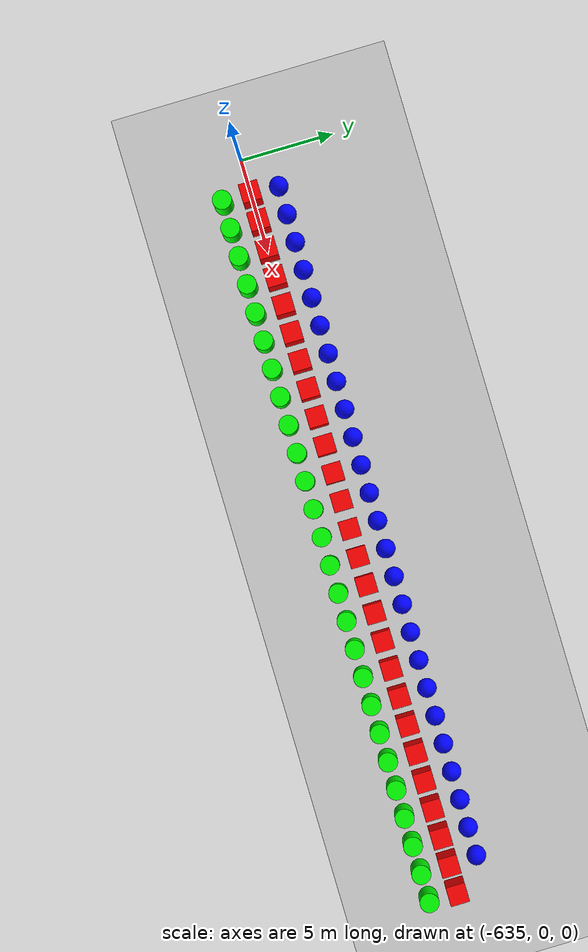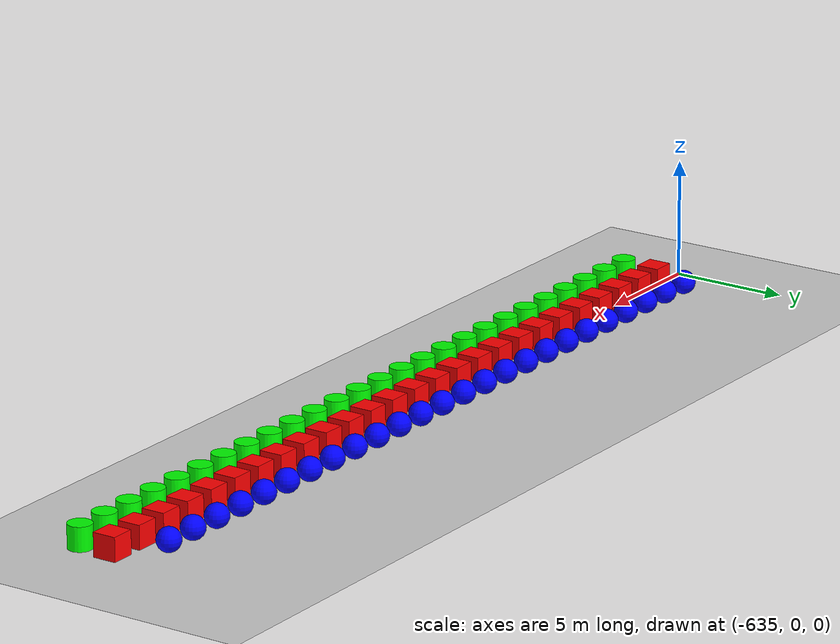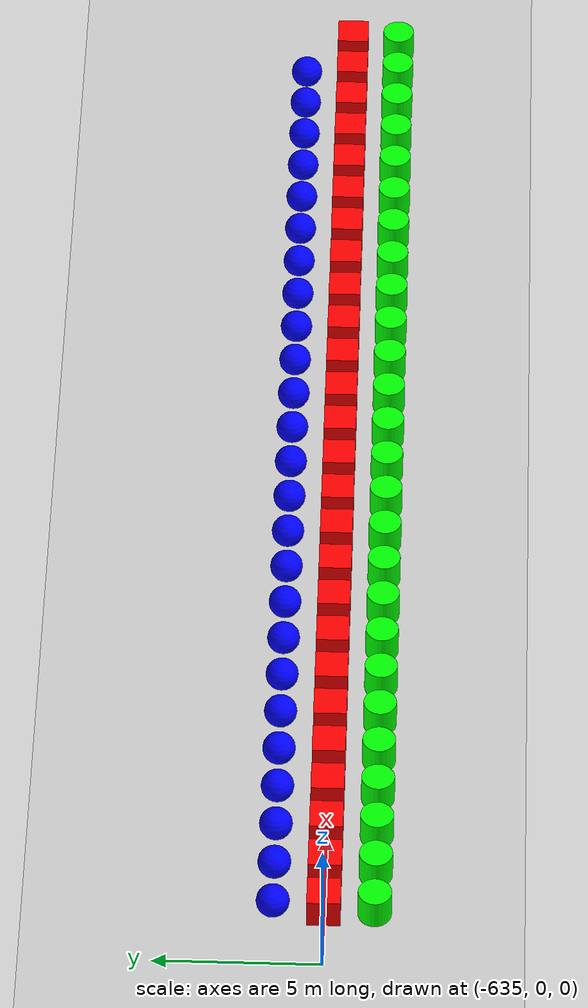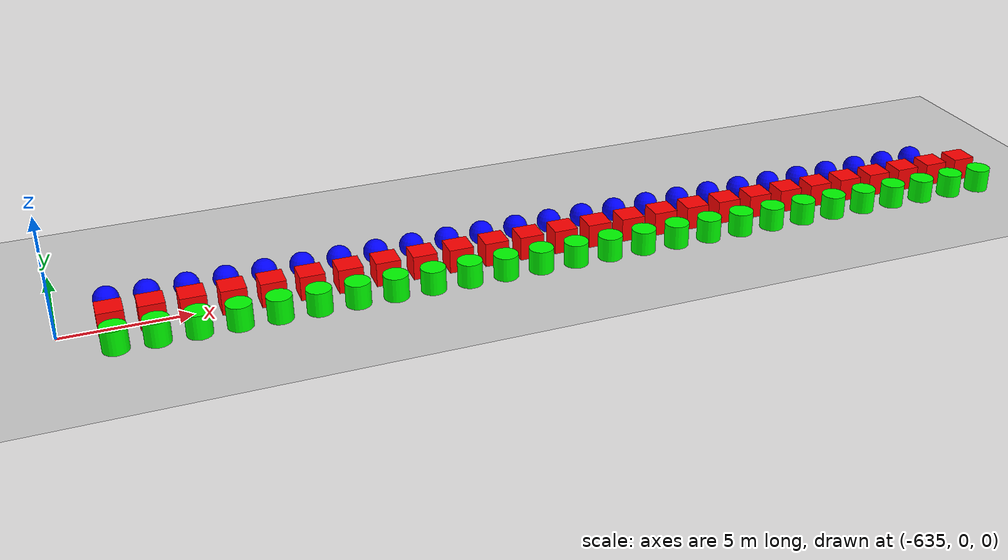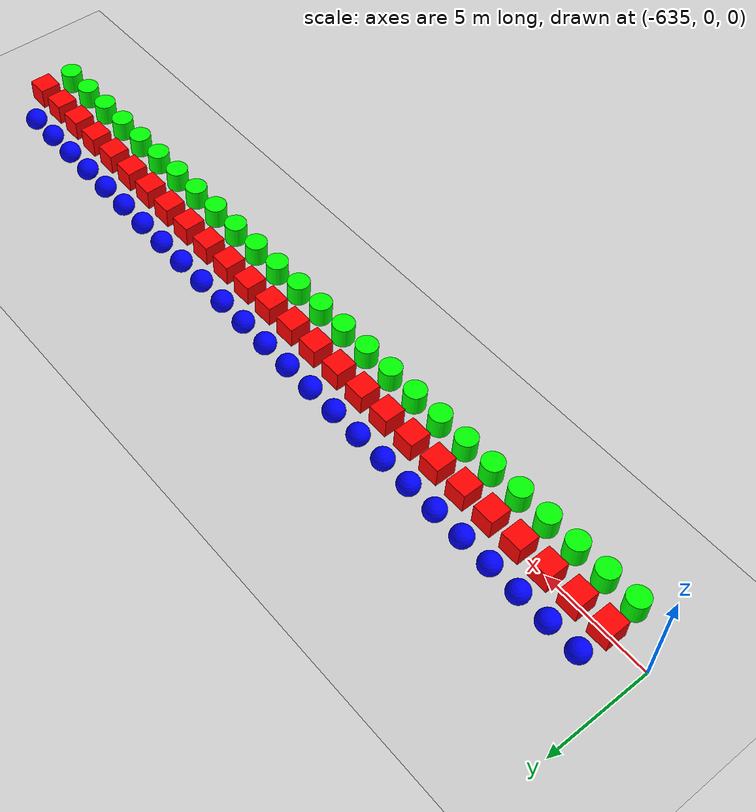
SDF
<sdf version="1.6">
 <world name="shapes">
  <model name="ground_plane">
   <static>true</static>
   <link name="link">
    <collision name="collision">
     <geometry><plane><normal>0 0 1</normal><size>100 100</size></plane></geometry>
    </collision>
    <visual name="visual">
     <geometry><plane><normal>0 0 1</normal><size>100 100</size></plane></geometry>
     <material>
      <ambient>0.8 0.8 0.8 1</ambient>
      <diffuse>0.8 0.8 0.8 1</diffuse>
      <specular>0.8 0.8 0.8 1</specular>
     </material>
    </visual>
   </link>
  </model>
  <model name="box_78">
   <static>false</static>
   <pose>-633.0 0 0.5 0 0 0</pose>
   <link name="box_link">
    <inertial>
     <inertia><ixx>1</ixx><ixy>0</ixy><ixz>0</ixz><iyy>1</iyy><iyz>0</iyz><izz>1</izz></inertia>
     <mass>1.0</mass>
    </inertial>
    <collision name="box_collision"><geometry><box><size>1 1 1</size></box></geometry></collision>
    <visual name="box_visual">
     <geometry><box><size>1 1 1</size></box></geometry>
     <material><ambient>1 0 0 1</ambient><diffuse>1 0 0 1</diffuse><specular>1 0 0 1</specular></material>
    </visual>
   </link>
  </model>
  <model name="cylinder_78">
   <static>false</static>
   <pose>-633.0 -1.5 0.5 0 0 0</pose>
   <link name="cylinder_link">
    <inertial>
     <inertia><ixx>2</ixx><ixy>0</ixy><ixz>0</ixz><iyy>2</iyy><iyz>0</iyz><izz>2</izz></inertia>
     <mass>2.0</mass>
    </inertial>
    <collision name="cylinder_collision">
     <geometry><cylinder><radius>0.5</radius><length>1.0</length></cylinder></geometry>
    </collision>
    <visual name="cylinder_visual">
     <geometry><cylinder><radius>0.5</radius><length>1.0</length></cylinder></geometry>
     <material><ambient>0 1 0 1</ambient><diffuse>0 1 0 1</diffuse><specular>0 1 0 1</specular></material>
    </visual>
   </link>
  </model>
  <model name="sphere_78">
   <static>false</static>
   <pose>-633.0 1.5 0.5 0 0 0</pose>
   <link name="sphere_link">
    <inertial>
     <inertia><ixx>3</ixx><ixy>0</ixy><ixz>0</ixz><iyy>3</iyy><iyz>0</iyz><izz>3</izz></inertia>
     <mass>3.0</mass>
    </inertial>
    <collision name="sphere_collision"><geometry><sphere><radius>0.5</radius></sphere></geometry></collision>
    <visual name="sphere_visual">
     <geometry><sphere><radius>0.5</radius></sphere></geometry>
     <material><ambient>0 0 1 1</ambient><diffuse>0 0 1 1</diffuse><specular>0 0 1 1</specular></material>
    </visual>
   </link>
  </model>
  <model name="box_79">
   <static>false</static>
   <pose>-631.5 0 0.5 0 0 0</pose>
   <link name="box_link">
    <inertial>
     <inertia><ixx>1</ixx><ixy>0</ixy><ixz>0</ixz><iyy>1</iyy><iyz>0</iyz><izz>1</izz></inertia>
     <mass>1.0</mass>
    </inertial>
    <collision name="box_collision"><geometry><box><size>1 1 1</size></box></geometry></collision>
    <visual name="box_visual">
     <geometry><box><size>1 1 1</size></box></geometry>
     <material><ambient>1 0 0 1</ambient><diffuse>1 0 0 1</diffuse><specular>1 0 0 1</specular></material>
    </visual>
   </link>
  </model>
  <model name="cylinder_79">
   <static>false</static>
   <pose>-631.5 -1.5 0.5 0 0 0</pose>
   <link name="cylinder_link">
    <inertial>
     <inertia><ixx>2</ixx><ixy>0</ixy><ixz>0</ixz><iyy>2</iyy><iyz>0</iyz><izz>2</izz></inertia>
     <mass>2.0</mass>
    </inertial>
    <collision name="cylinder_collision">
     <geometry><cylinder><radius>0.5</radius><length>1.0</length></cylinder></geometry>
    </collision>
    <visual name="cylinder_visual">
     <geometry><cylinder><radius>0.5</radius><length>1.0</length></cylinder></geometry>
     <material><ambient>0 1 0 1</ambient><diffuse>0 1 0 1</diffuse><specular>0 1 0 1</specular></material>
    </visual>
   </link>
  </model>
  <model name="sphere_79">
   <static>false</static>
   <pose>-631.5 1.5 0.5 0 0 0</pose>
   <link name="sphere_link">
    <inertial>
     <inertia><ixx>3</ixx><ixy>0</ixy><ixz>0</ixz><iyy>3</iyy><iyz>0</iyz><izz>3</izz></inertia>
     <mass>3.0</mass>
    </inertial>
    <collision name="sphere_collision"><geometry><sphere><radius>0.5</radius></sphere></geometry></collision>
    <visual name="sphere_visual">
     <geometry><sphere><radius>0.5</radius></sphere></geometry>
     <material><ambient>0 0 1 1</ambient><diffuse>0 0 1 1</diffuse><specular>0 0 1 1</specular></material>
    </visual>
   </link>
  </model>
  <model name="box_80">
   <static>false</static>
   <pose>-630.0 0 0.5 0 0 0</pose>
   <link name="box_link">
    <inertial>
     <inertia><ixx>1</ixx><ixy>0</ixy><ixz>0</ixz><iyy>1</iyy><iyz>0</iyz><izz>1</izz></inertia>
     <mass>1.0</mass>
    </inertial>
    <collision name="box_collision"><geometry><box><size>1 1 1</size></box></geometry></collision>
    <visual name="box_visual">
     <geometry><box><size>1 1 1</size></box></geometry>
     <material><ambient>1 0 0 1</ambient><diffuse>1 0 0 1</diffuse><specular>1 0 0 1</specular></material>
    </visual>
   </link>
  </model>
  <model name="cylinder_80">
   <static>false</static>
   <pose>-630.0 -1.5 0.5 0 0 0</pose>
   <link name="cylinder_link">
    <inertial>
     <inertia><ixx>2</ixx><ixy>0</ixy><ixz>0</ixz><iyy>2</iyy><iyz>0</iyz><izz>2</izz></inertia>
     <mass>2.0</mass>
    </inertial>
    <collision name="cylinder_collision">
     <geometry><cylinder><radius>0.5</radius><length>1.0</length></cylinder></geometry>
    </collision>
    <visual name="cylinder_visual">
     <geometry><cylinder><radius>0.5</radius><length>1.0</length></cylinder></geometry>
     <material><ambient>0 1 0 1</ambient><diffuse>0 1 0 1</diffuse><specular>0 1 0 1</specular></material>
    </visual>
   </link>
  </model>
  <model name="sphere_80">
   <static>false</static>
   <pose>-630.0 1.5 0.5 0 0 0</pose>
   <link name="sphere_link">
    <inertial>
     <inertia><ixx>3</ixx><ixy>0</ixy><ixz>0</ixz><iyy>3</iyy><iyz>0</iyz><izz>3</izz></inertia>
     <mass>3.0</mass>
    </inertial>
    <collision name="sphere_collision"><geometry><sphere><radius>0.5</radius></sphere></geometry></collision>
    <visual name="sphere_visual">
     <geometry><sphere><radius>0.5</radius></sphere></geometry>
     <material><ambient>0 0 1 1</ambient><diffuse>0 0 1 1</diffuse><specular>0 0 1 1</specular></material>
    </visual>
   </link>
  </model>
  <model name="box_81">
   <static>false</static>
   <pose>-628.5 0 0.5 0 0 0</pose>
   <link name="box_link">
    <inertial>
     <inertia><ixx>1</ixx><ixy>0</ixy><ixz>0</ixz><iyy>1</iyy><iyz>0</iyz><izz>1</izz></inertia>
     <mass>1.0</mass>
    </inertial>
    <collision name="box_collision"><geometry><box><size>1 1 1</size></box></geometry></collision>
    <visual name="box_visual">
     <geometry><box><size>1 1 1</size></box></geometry>
     <material><ambient>1 0 0 1</ambient><diffuse>1 0 0 1</diffuse><specular>1 0 0 1</specular></material>
    </visual>
   </link>
  </model>
  <model name="cylinder_81">
   <static>false</static>
   <pose>-628.5 -1.5 0.5 0 0 0</pose>
   <link name="cylinder_link">
    <inertial>
     <inertia><ixx>2</ixx><ixy>0</ixy><ixz>0</ixz><iyy>2</iyy><iyz>0</iyz><izz>2</izz></inertia>
     <mass>2.0</mass>
    </inertial>
    <collision name="cylinder_collision">
     <geometry><cylinder><radius>0.5</radius><length>1.0</length></cylinder></geometry>
    </collision>
    <visual name="cylinder_visual">
     <geometry><cylinder><radius>0.5</radius><length>1.0</length></cylinder></geometry>
     <material><ambient>0 1 0 1</ambient><diffuse>0 1 0 1</diffuse><specular>0 1 0 1</specular></material>
    </visual>
   </link>
  </model>
  <model name="sphere_81">
   <static>false</static>
   <pose>-628.5 1.5 0.5 0 0 0</pose>
   <link name="sphere_link">
    <inertial>
     <inertia><ixx>3</ixx><ixy>0</ixy><ixz>0</ixz><iyy>3</iyy><iyz>0</iyz><izz>3</izz></inertia>
     <mass>3.0</mass>
    </inertial>
    <collision name="sphere_collision"><geometry><sphere><radius>0.5</radius></sphere></geometry></collision>
    <visual name="sphere_visual">
     <geometry><sphere><radius>0.5</radius></sphere></geometry>
     <material><ambient>0 0 1 1</ambient><diffuse>0 0 1 1</diffuse><specular>0 0 1 1</specular></material>
    </visual>
   </link>
  </model>
  <model name="box_82">
   <static>false</static>
   <pose>-627.0 0 0.5 0 0 0</pose>
   <link name="box_link">
    <inertial>
     <inertia><ixx>1</ixx><ixy>0</ixy><ixz>0</ixz><iyy>1</iyy><iyz>0</iyz><izz>1</izz></inertia>
     <mass>1.0</mass>
    </inertial>
    <collision name="box_collision"><geometry><box><size>1 1 1</size></box></geometry></collision>
    <visual name="box_visual">
     <geometry><box><size>1 1 1</size></box></geometry>
     <material><ambient>1 0 0 1</ambient><diffuse>1 0 0 1</diffuse><specular>1 0 0 1</specular></material>
    </visual>
   </link>
  </model>
  <model name="cylinder_82">
   <static>false</static>
   <pose>-627.0 -1.5 0.5 0 0 0</pose>
   <link name="cylinder_link">
    <inertial>
     <inertia><ixx>2</ixx><ixy>0</ixy><ixz>0</ixz><iyy>2</iyy><iyz>0</iyz><izz>2</izz></inertia>
     <mass>2.0</mass>
    </inertial>
    <collision name="cylinder_collision">
     <geometry><cylinder><radius>0.5</radius><length>1.0</length></cylinder></geometry>
    </collision>
    <visual name="cylinder_visual">
     <geometry><cylinder><radius>0.5</radius><length>1.0</length></cylinder></geometry>
     <material><ambient>0 1 0 1</ambient><diffuse>0 1 0 1</diffuse><specular>0 1 0 1</specular></material>
    </visual>
   </link>
  </model>
  <model name="sphere_82">
   <static>false</static>
   <pose>-627.0 1.5 0.5 0 0 0</pose>
   <link name="sphere_link">
    <inertial>
     <inertia><ixx>3</ixx><ixy>0</ixy><ixz>0</ixz><iyy>3</iyy><iyz>0</iyz><izz>3</izz></inertia>
     <mass>3.0</mass>
    </inertial>
    <collision name="sphere_collision"><geometry><sphere><radius>0.5</radius></sphere></geometry></collision>
    <visual name="sphere_visual">
     <geometry><sphere><radius>0.5</radius></sphere></geometry>
     <material><ambient>0 0 1 1</ambient><diffuse>0 0 1 1</diffuse><specular>0 0 1 1</specular></material>
    </visual>
   </link>
  </model>
  <model name="box_83">
   <static>false</static>
   <pose>-625.5 0 0.5 0 0 0</pose>
   <link name="box_link">
    <inertial>
     <inertia><ixx>1</ixx><ixy>0</ixy><ixz>0</ixz><iyy>1</iyy><iyz>0</iyz><izz>1</izz></inertia>
     <mass>1.0</mass>
    </inertial>
    <collision name="box_collision"><geometry><box><size>1 1 1</size></box></geometry></collision>
    <visual name="box_visual">
     <geometry><box><size>1 1 1</size></box></geometry>
     <material><ambient>1 0 0 1</ambient><diffuse>1 0 0 1</diffuse><specular>1 0 0 1</specular></material>
    </visual>
   </link>
  </model>
  <model name="cylinder_83">
   <static>false</static>
   <pose>-625.5 -1.5 0.5 0 0 0</pose>
   <link name="cylinder_link">
    <inertial>
     <inertia><ixx>2</ixx><ixy>0</ixy><ixz>0</ixz><iyy>2</iyy><iyz>0</iyz><izz>2</izz></inertia>
     <mass>2.0</mass>
    </inertial>
    <collision name="cylinder_collision">
     <geometry><cylinder><radius>0.5</radius><length>1.0</length></cylinder></geometry>
    </collision>
    <visual name="cylinder_visual">
     <geometry><cylinder><radius>0.5</radius><length>1.0</length></cylinder></geometry>
     <material><ambient>0 1 0 1</ambient><diffuse>0 1 0 1</diffuse><specular>0 1 0 1</specular></material>
    </visual>
   </link>
  </model>
  <model name="sphere_83">
   <static>false</static>
   <pose>-625.5 1.5 0.5 0 0 0</pose>
   <link name="sphere_link">
    <inertial>
     <inertia><ixx>3</ixx><ixy>0</ixy><ixz>0</ixz><iyy>3</iyy><iyz>0</iyz><izz>3</izz></inertia>
     <mass>3.0</mass>
    </inertial>
    <collision name="sphere_collision"><geometry><sphere><radius>0.5</radius></sphere></geometry></collision>
    <visual name="sphere_visual">
     <geometry><sphere><radius>0.5</radius></sphere></geometry>
     <material><ambient>0 0 1 1</ambient><diffuse>0 0 1 1</diffuse><specular>0 0 1 1</specular></material>
    </visual>
   </link>
  </model>
  <model name="box_84">
   <static>false</static>
   <pose>-624.0 0 0.5 0 0 0</pose>
   <link name="box_link">
    <inertial>
     <inertia><ixx>1</ixx><ixy>0</ixy><ixz>0</ixz><iyy>1</iyy><iyz>0</iyz><izz>1</izz></inertia>
     <mass>1.0</mass>
    </inertial>
    <collision name="box_collision"><geometry><box><size>1 1 1</size></box></geometry></collision>
    <visual name="box_visual">
     <geometry><box><size>1 1 1</size></box></geometry>
     <material><ambient>1 0 0 1</ambient><diffuse>1 0 0 1</diffuse><specular>1 0 0 1</specular></material>
    </visual>
   </link>
  </model>
  <model name="cylinder_84">
   <static>false</static>
   <pose>-624.0 -1.5 0.5 0 0 0</pose>
   <link name="cylinder_link">
    <inertial>
     <inertia><ixx>2</ixx><ixy>0</ixy><ixz>0</ixz><iyy>2</iyy><iyz>0</iyz><izz>2</izz></inertia>
     <mass>2.0</mass>
    </inertial>
    <collision name="cylinder_collision">
     <geometry><cylinder><radius>0.5</radius><length>1.0</length></cylinder></geometry>
    </collision>
    <visual name="cylinder_visual">
     <geometry><cylinder><radius>0.5</radius><length>1.0</length></cylinder></geometry>
     <material><ambient>0 1 0 1</ambient><diffuse>0 1 0 1</diffuse><specular>0 1 0 1</specular></material>
    </visual>
   </link>
  </model>
  <model name="sphere_84">
   <static>false</static>
   <pose>-624.0 1.5 0.5 0 0 0</pose>
   <link name="sphere_link">
    <inertial>
     <inertia><ixx>3</ixx><ixy>0</ixy><ixz>0</ixz><iyy>3</iyy><iyz>0</iyz><izz>3</izz></inertia>
     <mass>3.0</mass>
    </inertial>
    <collision name="sphere_collision"><geometry><sphere><radius>0.5</radius></sphere></geometry></collision>
    <visual name="sphere_visual">
     <geometry><sphere><radius>0.5</radius></sphere></geometry>
     <material><ambient>0 0 1 1</ambient><diffuse>0 0 1 1</diffuse><specular>0 0 1 1</specular></material>
    </visual>
   </link>
  </model>
  <model name="box_85">
   <static>false</static>
   <pose>-622.5 0 0.5 0 0 0</pose>
   <link name="box_link">
    <inertial>
     <inertia><ixx>1</ixx><ixy>0</ixy><ixz>0</ixz><iyy>1</iyy><iyz>0</iyz><izz>1</izz></inertia>
     <mass>1.0</mass>
    </inertial>
    <collision name="box_collision"><geometry><box><size>1 1 1</size></box></geometry></collision>
    <visual name="box_visual">
     <geometry><box><size>1 1 1</size></box></geometry>
     <material><ambient>1 0 0 1</ambient><diffuse>1 0 0 1</diffuse><specular>1 0 0 1</specular></material>
    </visual>
   </link>
  </model>
  <model name="cylinder_85">
   <static>false</static>
   <pose>-622.5 -1.5 0.5 0 0 0</pose>
   <link name="cylinder_link">
    <inertial>
     <inertia><ixx>2</ixx><ixy>0</ixy><ixz>0</ixz><iyy>2</iyy><iyz>0</iyz><izz>2</izz></inertia>
     <mass>2.0</mass>
    </inertial>
    <collision name="cylinder_collision">
     <geometry><cylinder><radius>0.5</radius><length>1.0</length></cylinder></geometry>
    </collision>
    <visual name="cylinder_visual">
     <geometry><cylinder><radius>0.5</radius><length>1.0</length></cylinder></geometry>
     <material><ambient>0 1 0 1</ambient><diffuse>0 1 0 1</diffuse><specular>0 1 0 1</specular></material>
    </visual>
   </link>
  </model>
  <model name="sphere_85">
   <static>false</static>
   <pose>-622.5 1.5 0.5 0 0 0</pose>
   <link name="sphere_link">
    <inertial>
     <inertia><ixx>3</ixx><ixy>0</ixy><ixz>0</ixz><iyy>3</iyy><iyz>0</iyz><izz>3</izz></inertia>
     <mass>3.0</mass>
    </inertial>
    <collision name="sphere_collision"><geometry><sphere><radius>0.5</radius></sphere></geometry></collision>
    <visual name="sphere_visual">
     <geometry><sphere><radius>0.5</radius></sphere></geometry>
     <material><ambient>0 0 1 1</ambient><diffuse>0 0 1 1</diffuse><specular>0 0 1 1</specular></material>
    </visual>
   </link>
  </model>
  <model name="box_86">
   <static>false</static>
   <pose>-621.0 0 0.5 0 0 0</pose>
   <link name="box_link">
    <inertial>
     <inertia><ixx>1</ixx><ixy>0</ixy><ixz>0</ixz><iyy>1</iyy><iyz>0</iyz><izz>1</izz></inertia>
     <mass>1.0</mass>
    </inertial>
    <collision name="box_collision"><geometry><box><size>1 1 1</size></box></geometry></collision>
    <visual name="box_visual">
     <geometry><box><size>1 1 1</size></box></geometry>
     <material><ambient>1 0 0 1</ambient><diffuse>1 0 0 1</diffuse><specular>1 0 0 1</specular></material>
    </visual>
   </link>
  </model>
  <model name="cylinder_86">
   <static>false</static>
   <pose>-621.0 -1.5 0.5 0 0 0</pose>
   <link name="cylinder_link">
    <inertial>
     <inertia><ixx>2</ixx><ixy>0</ixy><ixz>0</ixz><iyy>2</iyy><iyz>0</iyz><izz>2</izz></inertia>
     <mass>2.0</mass>
    </inertial>
    <collision name="cylinder_collision">
     <geometry><cylinder><radius>0.5</radius><length>1.0</length></cylinder></geometry>
    </collision>
    <visual name="cylinder_visual">
     <geometry><cylinder><radius>0.5</radius><length>1.0</length></cylinder></geometry>
     <material><ambient>0 1 0 1</ambient><diffuse>0 1 0 1</diffuse><specular>0 1 0 1</specular></material>
    </visual>
   </link>
  </model>
  <model name="sphere_86">
   <static>false</static>
   <pose>-621.0 1.5 0.5 0 0 0</pose>
   <link name="sphere_link">
    <inertial>
     <inertia><ixx>3</ixx><ixy>0</ixy><ixz>0</ixz><iyy>3</iyy><iyz>0</iyz><izz>3</izz></inertia>
     <mass>3.0</mass>
    </inertial>
    <collision name="sphere_collision"><geometry><sphere><radius>0.5</radius></sphere></geometry></collision>
    <visual name="sphere_visual">
     <geometry><sphere><radius>0.5</radius></sphere></geometry>
     <material><ambient>0 0 1 1</ambient><diffuse>0 0 1 1</diffuse><specular>0 0 1 1</specular></material>
    </visual>
   </link>
  </model>
  <model name="box_87">
   <static>false</static>
   <pose>-619.5 0 0.5 0 0 0</pose>
   <link name="box_link">
    <inertial>
     <inertia><ixx>1</ixx><ixy>0</ixy><ixz>0</ixz><iyy>1</iyy><iyz>0</iyz><izz>1</izz></inertia>
     <mass>1.0</mass>
    </inertial>
    <collision name="box_collision"><geometry><box><size>1 1 1</size></box></geometry></collision>
    <visual name="box_visual">
     <geometry><box><size>1 1 1</size></box></geometry>
     <material><ambient>1 0 0 1</ambient><diffuse>1 0 0 1</diffuse><specular>1 0 0 1</specular></material>
    </visual>
   </link>
  </model>
  <model name="cylinder_87">
   <static>false</static>
   <pose>-619.5 -1.5 0.5 0 0 0</pose>
   <link name="cylinder_link">
    <inertial>
     <inertia><ixx>2</ixx><ixy>0</ixy><ixz>0</ixz><iyy>2</iyy><iyz>0</iyz><izz>2</izz></inertia>
     <mass>2.0</mass>
    </inertial>
    <collision name="cylinder_collision">
     <geometry><cylinder><radius>0.5</radius><length>1.0</length></cylinder></geometry>
    </collision>
    <visual name="cylinder_visual">
     <geometry><cylinder><radius>0.5</radius><length>1.0</length></cylinder></geometry>
     <material><ambient>0 1 0 1</ambient><diffuse>0 1 0 1</diffuse><specular>0 1 0 1</specular></material>
    </visual>
   </link>
  </model>
  <model name="sphere_87">
   <static>false</static>
   <pose>-619.5 1.5 0.5 0 0 0</pose>
   <link name="sphere_link">
    <inertial>
     <inertia><ixx>3</ixx><ixy>0</ixy><ixz>0</ixz><iyy>3</iyy><iyz>0</iyz><izz>3</izz></inertia>
     <mass>3.0</mass>
    </inertial>
    <collision name="sphere_collision"><geometry><sphere><radius>0.5</radius></sphere></geometry></collision>
    <visual name="sphere_visual">
     <geometry><sphere><radius>0.5</radius></sphere></geometry>
     <material><ambient>0 0 1 1</ambient><diffuse>0 0 1 1</diffuse><specular>0 0 1 1</specular></material>
    </visual>
   </link>
  </model>
  <model name="box_88">
   <static>false</static>
   <pose>-618.0 0 0.5 0 0 0</pose>
   <link name="box_link">
    <inertial>
     <inertia><ixx>1</ixx><ixy>0</ixy><ixz>0</ixz><iyy>1</iyy><iyz>0</iyz><izz>1</izz></inertia>
     <mass>1.0</mass>
    </inertial>
    <collision name="box_collision"><geometry><box><size>1 1 1</size></box></geometry></collision>
    <visual name="box_visual">
     <geometry><box><size>1 1 1</size></box></geometry>
     <material><ambient>1 0 0 1</ambient><diffuse>1 0 0 1</diffuse><specular>1 0 0 1</specular></material>
    </visual>
   </link>
  </model>
  <model name="cylinder_88">
   <static>false</static>
   <pose>-618.0 -1.5 0.5 0 0 0</pose>
   <link name="cylinder_link">
    <inertial>
     <inertia><ixx>2</ixx><ixy>0</ixy><ixz>0</ixz><iyy>2</iyy><iyz>0</iyz><izz>2</izz></inertia>
     <mass>2.0</mass>
    </inertial>
    <collision name="cylinder_collision">
     <geometry><cylinder><radius>0.5</radius><length>1.0</length></cylinder></geometry>
    </collision>
    <visual name="cylinder_visual">
     <geometry><cylinder><radius>0.5</radius><length>1.0</length></cylinder></geometry>
     <material><ambient>0 1 0 1</ambient><diffuse>0 1 0 1</diffuse><specular>0 1 0 1</specular></material>
    </visual>
   </link>
  </model>
  <model name="sphere_88">
   <static>false</static>
   <pose>-618.0 1.5 0.5 0 0 0</pose>
   <link name="sphere_link">
    <inertial>
     <inertia><ixx>3</ixx><ixy>0</ixy><ixz>0</ixz><iyy>3</iyy><iyz>0</iyz><izz>3</izz></inertia>
     <mass>3.0</mass>
    </inertial>
    <collision name="sphere_collision"><geometry><sphere><radius>0.5</radius></sphere></geometry></collision>
    <visual name="sphere_visual">
     <geometry><sphere><radius>0.5</radius></sphere></geometry>
     <material><ambient>0 0 1 1</ambient><diffuse>0 0 1 1</diffuse><specular>0 0 1 1</specular></material>
    </visual>
   </link>
  </model>
  <model name="box_89">
   <static>false</static>
   <pose>-616.5 0 0.5 0 0 0</pose>
   <link name="box_link">
    <inertial>
     <inertia><ixx>1</ixx><ixy>0</ixy><ixz>0</ixz><iyy>1</iyy><iyz>0</iyz><izz>1</izz></inertia>
     <mass>1.0</mass>
    </inertial>
    <collision name="box_collision"><geometry><box><size>1 1 1</size></box></geometry></collision>
    <visual name="box_visual">
     <geometry><box><size>1 1 1</size></box></geometry>
     <material><ambient>1 0 0 1</ambient><diffuse>1 0 0 1</diffuse><specular>1 0 0 1</specular></material>
    </visual>
   </link>
  </model>
  <model name="cylinder_89">
   <static>false</static>
   <pose>-616.5 -1.5 0.5 0 0 0</pose>
   <link name="cylinder_link">
    <inertial>
     <inertia><ixx>2</ixx><ixy>0</ixy><ixz>0</ixz><iyy>2</iyy><iyz>0</iyz><izz>2</izz></inertia>
     <mass>2.0</mass>
    </inertial>
    <collision name="cylinder_collision">
     <geometry><cylinder><radius>0.5</radius><length>1.0</length></cylinder></geometry>
    </collision>
    <visual name="cylinder_visual">
     <geometry><cylinder><radius>0.5</radius><length>1.0</length></cylinder></geometry>
     <material><ambient>0 1 0 1</ambient><diffuse>0 1 0 1</diffuse><specular>0 1 0 1</specular></material>
    </visual>
   </link>
  </model>
  <model name="sphere_89">
   <static>false</static>
   <pose>-616.5 1.5 0.5 0 0 0</pose>
   <link name="sphere_link">
    <inertial>
     <inertia><ixx>3</ixx><ixy>0</ixy><ixz>0</ixz><iyy>3</iyy><iyz>0</iyz><izz>3</izz></inertia>
     <mass>3.0</mass>
    </inertial>
    <collision name="sphere_collision"><geometry><sphere><radius>0.5</radius></sphere></geometry></collision>
    <visual name="sphere_visual">
     <geometry><sphere><radius>0.5</radius></sphere></geometry>
     <material><ambient>0 0 1 1</ambient><diffuse>0 0 1 1</diffuse><specular>0 0 1 1</specular></material>
    </visual>
   </link>
  </model>
  <model name="box_90">
   <static>false</static>
   <pose>-615.0 0 0.5 0 0 0</pose>
   <link name="box_link">
    <inertial>
     <inertia><ixx>1</ixx><ixy>0</ixy><ixz>0</ixz><iyy>1</iyy><iyz>0</iyz><izz>1</izz></inertia>
     <mass>1.0</mass>
    </inertial>
    <collision name="box_collision"><geometry><box><size>1 1 1</size></box></geometry></collision>
    <visual name="box_visual">
     <geometry><box><size>1 1 1</size></box></geometry>
     <material><ambient>1 0 0 1</ambient><diffuse>1 0 0 1</diffuse><specular>1 0 0 1</specular></material>
    </visual>
   </link>
  </model>
  <model name="cylinder_90">
   <static>false</static>
   <pose>-615.0 -1.5 0.5 0 0 0</pose>
   <link name="cylinder_link">
    <inertial>
     <inertia><ixx>2</ixx><ixy>0</ixy><ixz>0</ixz><iyy>2</iyy><iyz>0</iyz><izz>2</izz></inertia>
     <mass>2.0</mass>
    </inertial>
    <collision name="cylinder_collision">
     <geometry><cylinder><radius>0.5</radius><length>1.0</length></cylinder></geometry>
    </collision>
    <visual name="cylinder_visual">
     <geometry><cylinder><radius>0.5</radius><length>1.0</length></cylinder></geometry>
     <material><ambient>0 1 0 1</ambient><diffuse>0 1 0 1</diffuse><specular>0 1 0 1</specular></material>
    </visual>
   </link>
  </model>
  <model name="sphere_90">
   <static>false</static>
   <pose>-615.0 1.5 0.5 0 0 0</pose>
   <link name="sphere_link">
    <inertial>
     <inertia><ixx>3</ixx><ixy>0</ixy><ixz>0</ixz><iyy>3</iyy><iyz>0</iyz><izz>3</izz></inertia>
     <mass>3.0</mass>
    </inertial>
    <collision name="sphere_collision"><geometry><sphere><radius>0.5</radius></sphere></geometry></collision>
    <visual name="sphere_visual">
     <geometry><sphere><radius>0.5</radius></sphere></geometry>
     <material><ambient>0 0 1 1</ambient><diffuse>0 0 1 1</diffuse><specular>0 0 1 1</specular></material>
    </visual>
   </link>
  </model>
  <model name="box_91">
   <static>false</static>
   <pose>-613.5 0 0.5 0 0 0</pose>
   <link name="box_link">
    <inertial>
     <inertia><ixx>1</ixx><ixy>0</ixy><ixz>0</ixz><iyy>1</iyy><iyz>0</iyz><izz>1</izz></inertia>
     <mass>1.0</mass>
    </inertial>
    <collision name="box_collision"><geometry><box><size>1 1 1</size></box></geometry></collision>
    <visual name="box_visual">
     <geometry><box><size>1 1 1</size></box></geometry>
     <material><ambient>1 0 0 1</ambient><diffuse>1 0 0 1</diffuse><specular>1 0 0 1</specular></material>
    </visual>
   </link>
  </model>
  <model name="cylinder_91">
   <static>false</static>
   <pose>-613.5 -1.5 0.5 0 0 0</pose>
   <link name="cylinder_link">
    <inertial>
     <inertia><ixx>2</ixx><ixy>0</ixy><ixz>0</ixz><iyy>2</iyy><iyz>0</iyz><izz>2</izz></inertia>
     <mass>2.0</mass>
    </inertial>
    <collision name="cylinder_collision">
     <geometry><cylinder><radius>0.5</radius><length>1.0</length></cylinder></geometry>
    </collision>
    <visual name="cylinder_visual">
     <geometry><cylinder><radius>0.5</radius><length>1.0</length></cylinder></geometry>
     <material><ambient>0 1 0 1</ambient><diffuse>0 1 0 1</diffuse><specular>0 1 0 1</specular></material>
    </visual>
   </link>
  </model>
  <model name="sphere_91">
   <static>false</static>
   <pose>-613.5 1.5 0.5 0 0 0</pose>
   <link name="sphere_link">
    <inertial>
     <inertia><ixx>3</ixx><ixy>0</ixy><ixz>0</ixz><iyy>3</iyy><iyz>0</iyz><izz>3</izz></inertia>
     <mass>3.0</mass>
    </inertial>
    <collision name="sphere_collision"><geometry><sphere><radius>0.5</radius></sphere></geometry></collision>
    <visual name="sphere_visual">
     <geometry><sphere><radius>0.5</radius></sphere></geometry>
     <material><ambient>0 0 1 1</ambient><diffuse>0 0 1 1</diffuse><specular>0 0 1 1</specular></material>
    </visual>
   </link>
  </model>
  <model name="box_92">
   <static>false</static>
   <pose>-612.0 0 0.5 0 0 0</pose>
   <link name="box_link">
    <inertial>
     <inertia><ixx>1</ixx><ixy>0</ixy><ixz>0</ixz><iyy>1</iyy><iyz>0</iyz><izz>1</izz></inertia>
     <mass>1.0</mass>
    </inertial>
    <collision name="box_collision"><geometry><box><size>1 1 1</size></box></geometry></collision>
    <visual name="box_visual">
     <geometry><box><size>1 1 1</size></box></geometry>
     <material><ambient>1 0 0 1</ambient><diffuse>1 0 0 1</diffuse><specular>1 0 0 1</specular></material>
    </visual>
   </link>
  </model>
  <model name="cylinder_92">
   <static>false</static>
   <pose>-612.0 -1.5 0.5 0 0 0</pose>
   <link name="cylinder_link">
    <inertial>
     <inertia><ixx>2</ixx><ixy>0</ixy><ixz>0</ixz><iyy>2</iyy><iyz>0</iyz><izz>2</izz></inertia>
     <mass>2.0</mass>
    </inertial>
    <collision name="cylinder_collision">
     <geometry><cylinder><radius>0.5</radius><length>1.0</length></cylinder></geometry>
    </collision>
    <visual name="cylinder_visual">
     <geometry><cylinder><radius>0.5</radius><length>1.0</length></cylinder></geometry>
     <material><ambient>0 1 0 1</ambient><diffuse>0 1 0 1</diffuse><specular>0 1 0 1</specular></material>
    </visual>
   </link>
  </model>
  <model name="sphere_92">
   <static>false</static>
   <pose>-612.0 1.5 0.5 0 0 0</pose>
   <link name="sphere_link">
    <inertial>
     <inertia><ixx>3</ixx><ixy>0</ixy><ixz>0</ixz><iyy>3</iyy><iyz>0</iyz><izz>3</izz></inertia>
     <mass>3.0</mass>
    </inertial>
    <collision name="sphere_collision"><geometry><sphere><radius>0.5</radius></sphere></geometry></collision>
    <visual name="sphere_visual">
     <geometry><sphere><radius>0.5</radius></sphere></geometry>
     <material><ambient>0 0 1 1</ambient><diffuse>0 0 1 1</diffuse><specular>0 0 1 1</specular></material>
    </visual>
   </link>
  </model>
  <model name="box_93">
   <static>false</static>
   <pose>-610.5 0 0.5 0 0 0</pose>
   <link name="box_link">
    <inertial>
     <inertia><ixx>1</ixx><ixy>0</ixy><ixz>0</ixz><iyy>1</iyy><iyz>0</iyz><izz>1</izz></inertia>
     <mass>1.0</mass>
    </inertial>
    <collision name="box_collision"><geometry><box><size>1 1 1</size></box></geometry></collision>
    <visual name="box_visual">
     <geometry><box><size>1 1 1</size></box></geometry>
     <material><ambient>1 0 0 1</ambient><diffuse>1 0 0 1</diffuse><specular>1 0 0 1</specular></material>
    </visual>
   </link>
  </model>
  <model name="cylinder_93">
   <static>false</static>
   <pose>-610.5 -1.5 0.5 0 0 0</pose>
   <link name="cylinder_link">
    <inertial>
     <inertia><ixx>2</ixx><ixy>0</ixy><ixz>0</ixz><iyy>2</iyy><iyz>0</iyz><izz>2</izz></inertia>
     <mass>2.0</mass>
    </inertial>
    <collision name="cylinder_collision">
     <geometry><cylinder><radius>0.5</radius><length>1.0</length></cylinder></geometry>
    </collision>
    <visual name="cylinder_visual">
     <geometry><cylinder><radius>0.5</radius><length>1.0</length></cylinder></geometry>
     <material><ambient>0 1 0 1</ambient><diffuse>0 1 0 1</diffuse><specular>0 1 0 1</specular></material>
    </visual>
   </link>
  </model>
  <model name="sphere_93">
   <static>false</static>
   <pose>-610.5 1.5 0.5 0 0 0</pose>
   <link name="sphere_link">
    <inertial>
     <inertia><ixx>3</ixx><ixy>0</ixy><ixz>0</ixz><iyy>3</iyy><iyz>0</iyz><izz>3</izz></inertia>
     <mass>3.0</mass>
    </inertial>
    <collision name="sphere_collision"><geometry><sphere><radius>0.5</radius></sphere></geometry></collision>
    <visual name="sphere_visual">
     <geometry><sphere><radius>0.5</radius></sphere></geometry>
     <material><ambient>0 0 1 1</ambient><diffuse>0 0 1 1</diffuse><specular>0 0 1 1</specular></material>
    </visual>
   </link>
  </model>
  <model name="box_94">
   <static>false</static>
   <pose>-609.0 0 0.5 0 0 0</pose>
   <link name="box_link">
    <inertial>
     <inertia><ixx>1</ixx><ixy>0</ixy><ixz>0</ixz><iyy>1</iyy><iyz>0</iyz><izz>1</izz></inertia>
     <mass>1.0</mass>
    </inertial>
    <collision name="box_collision"><geometry><box><size>1 1 1</size></box></geometry></collision>
    <visual name="box_visual">
     <geometry><box><size>1 1 1</size></box></geometry>
     <material><ambient>1 0 0 1</ambient><diffuse>1 0 0 1</diffuse><specular>1 0 0 1</specular></material>
    </visual>
   </link>
  </model>
  <model name="cylinder_94">
   <static>false</static>
   <pose>-609.0 -1.5 0.5 0 0 0</pose>
   <link name="cylinder_link">
    <inertial>
     <inertia><ixx>2</ixx><ixy>0</ixy><ixz>0</ixz><iyy>2</iyy><iyz>0</iyz><izz>2</izz></inertia>
     <mass>2.0</mass>
    </inertial>
    <collision name="cylinder_collision">
     <geometry><cylinder><radius>0.5</radius><length>1.0</length></cylinder></geometry>
    </collision>
    <visual name="cylinder_visual">
     <geometry><cylinder><radius>0.5</radius><length>1.0</length></cylinder></geometry>
     <material><ambient>0 1 0 1</ambient><diffuse>0 1 0 1</diffuse><specular>0 1 0 1</specular></material>
    </visual>
   </link>
  </model>
  <model name="sphere_94">
   <static>false</static>
   <pose>-609.0 1.5 0.5 0 0 0</pose>
   <link name="sphere_link">
    <inertial>
     <inertia><ixx>3</ixx><ixy>0</ixy><ixz>0</ixz><iyy>3</iyy><iyz>0</iyz><izz>3</izz></inertia>
     <mass>3.0</mass>
    </inertial>
    <collision name="sphere_collision"><geometry><sphere><radius>0.5</radius></sphere></geometry></collision>
    <visual name="sphere_visual">
     <geometry><sphere><radius>0.5</radius></sphere></geometry>
     <material><ambient>0 0 1 1</ambient><diffuse>0 0 1 1</diffuse><specular>0 0 1 1</specular></material>
    </visual>
   </link>
  </model>
  <model name="box_95">
   <static>false</static>
   <pose>-607.5 0 0.5 0 0 0</pose>
   <link name="box_link">
    <inertial>
     <inertia><ixx>1</ixx><ixy>0</ixy><ixz>0</ixz><iyy>1</iyy><iyz>0</iyz><izz>1</izz></inertia>
     <mass>1.0</mass>
    </inertial>
    <collision name="box_collision"><geometry><box><size>1 1 1</size></box></geometry></collision>
    <visual name="box_visual">
     <geometry><box><size>1 1 1</size></box></geometry>
     <material><ambient>1 0 0 1</ambient><diffuse>1 0 0 1</diffuse><specular>1 0 0 1</specular></material>
    </visual>
   </link>
  </model>
  <model name="cylinder_95">
   <static>false</static>
   <pose>-607.5 -1.5 0.5 0 0 0</pose>
   <link name="cylinder_link">
    <inertial>
     <inertia><ixx>2</ixx><ixy>0</ixy><ixz>0</ixz><iyy>2</iyy><iyz>0</iyz><izz>2</izz></inertia>
     <mass>2.0</mass>
    </inertial>
    <collision name="cylinder_collision">
     <geometry><cylinder><radius>0.5</radius><length>1.0</length></cylinder></geometry>
    </collision>
    <visual name="cylinder_visual">
     <geometry><cylinder><radius>0.5</radius><length>1.0</length></cylinder></geometry>
     <material><ambient>0 1 0 1</ambient><diffuse>0 1 0 1</diffuse><specular>0 1 0 1</specular></material>
    </visual>
   </link>
  </model>
  <model name="sphere_95">
   <static>false</static>
   <pose>-607.5 1.5 0.5 0 0 0</pose>
   <link name="sphere_link">
    <inertial>
     <inertia><ixx>3</ixx><ixy>0</ixy><ixz>0</ixz><iyy>3</iyy><iyz>0</iyz><izz>3</izz></inertia>
     <mass>3.0</mass>
    </inertial>
    <collision name="sphere_collision"><geometry><sphere><radius>0.5</radius></sphere></geometry></collision>
    <visual name="sphere_visual">
     <geometry><sphere><radius>0.5</radius></sphere></geometry>
     <material><ambient>0 0 1 1</ambient><diffuse>0 0 1 1</diffuse><specular>0 0 1 1</specular></material>
    </visual>
   </link>
  </model>
  <model name="box_96">
   <static>false</static>
   <pose>-606.0 0 0.5 0 0 0</pose>
   <link name="box_link">
    <inertial>
     <inertia><ixx>1</ixx><ixy>0</ixy><ixz>0</ixz><iyy>1</iyy><iyz>0</iyz><izz>1</izz></inertia>
     <mass>1.0</mass>
    </inertial>
    <collision name="box_collision"><geometry><box><size>1 1 1</size></box></geometry></collision>
    <visual name="box_visual">
     <geometry><box><size>1 1 1</size></box></geometry>
     <material><ambient>1 0 0 1</ambient><diffuse>1 0 0 1</diffuse><specular>1 0 0 1</specular></material>
    </visual>
   </link>
  </model>
  <model name="cylinder_96">
   <static>false</static>
   <pose>-606.0 -1.5 0.5 0 0 0</pose>
   <link name="cylinder_link">
    <inertial>
     <inertia><ixx>2</ixx><ixy>0</ixy><ixz>0</ixz><iyy>2</iyy><iyz>0</iyz><izz>2</izz></inertia>
     <mass>2.0</mass>
    </inertial>
    <collision name="cylinder_collision">
     <geometry><cylinder><radius>0.5</radius><length>1.0</length></cylinder></geometry>
    </collision>
    <visual name="cylinder_visual">
     <geometry><cylinder><radius>0.5</radius><length>1.0</length></cylinder></geometry>
     <material><ambient>0 1 0 1</ambient><diffuse>0 1 0 1</diffuse><specular>0 1 0 1</specular></material>
    </visual>
   </link>
  </model>
  <model name="sphere_96">
   <static>false</static>
   <pose>-606.0 1.5 0.5 0 0 0</pose>
   <link name="sphere_link">
    <inertial>
     <inertia><ixx>3</ixx><ixy>0</ixy><ixz>0</ixz><iyy>3</iyy><iyz>0</iyz><izz>3</izz></inertia>
     <mass>3.0</mass>
    </inertial>
    <collision name="sphere_collision"><geometry><sphere><radius>0.5</radius></sphere></geometry></collision>
    <visual name="sphere_visual">
     <geometry><sphere><radius>0.5</radius></sphere></geometry>
     <material><ambient>0 0 1 1</ambient><diffuse>0 0 1 1</diffuse><specular>0 0 1 1</specular></material>
    </visual>
   </link>
  </model>
  <model name="box_97">
   <static>false</static>
   <pose>-604.5 0 0.5 0 0 0</pose>
   <link name="box_link">
    <inertial>
     <inertia><ixx>1</ixx><ixy>0</ixy><ixz>0</ixz><iyy>1</iyy><iyz>0</iyz><izz>1</izz></inertia>
     <mass>1.0</mass>
    </inertial>
    <collision name="box_collision"><geometry><box><size>1 1 1</size></box></geometry></collision>
    <visual name="box_visual">
     <geometry><box><size>1 1 1</size></box></geometry>
     <material><ambient>1 0 0 1</ambient><diffuse>1 0 0 1</diffuse><specular>1 0 0 1</specular></material>
    </visual>
   </link>
  </model>
  <model name="cylinder_97">
   <static>false</static>
   <pose>-604.5 -1.5 0.5 0 0 0</pose>
   <link name="cylinder_link">
    <inertial>
     <inertia><ixx>2</ixx><ixy>0</ixy><ixz>0</ixz><iyy>2</iyy><iyz>0</iyz><izz>2</izz></inertia>
     <mass>2.0</mass>
    </inertial>
    <collision name="cylinder_collision">
     <geometry><cylinder><radius>0.5</radius><length>1.0</length></cylinder></geometry>
    </collision>
    <visual name="cylinder_visual">
     <geometry><cylinder><radius>0.5</radius><length>1.0</length></cylinder></geometry>
     <material><ambient>0 1 0 1</ambient><diffuse>0 1 0 1</diffuse><specular>0 1 0 1</specular></material>
    </visual>
   </link>
  </model>
  <model name="sphere_97">
   <static>false</static>
   <pose>-604.5 1.5 0.5 0 0 0</pose>
   <link name="sphere_link">
    <inertial>
     <inertia><ixx>3</ixx><ixy>0</ixy><ixz>0</ixz><iyy>3</iyy><iyz>0</iyz><izz>3</izz></inertia>
     <mass>3.0</mass>
    </inertial>
    <collision name="sphere_collision"><geometry><sphere><radius>0.5</radius></sphere></geometry></collision>
    <visual name="sphere_visual">
     <geometry><sphere><radius>0.5</radius></sphere></geometry>
     <material><ambient>0 0 1 1</ambient><diffuse>0 0 1 1</diffuse><specular>0 0 1 1</specular></material>
    </visual>
   </link>
  </model>
  <model name="box_98">
   <static>false</static>
   <pose>-603.0 0 0.5 0 0 0</pose>
   <link name="box_link">
    <inertial>
     <inertia><ixx>1</ixx><ixy>0</ixy><ixz>0</ixz><iyy>1</iyy><iyz>0</iyz><izz>1</izz></inertia>
     <mass>1.0</mass>
    </inertial>
    <collision name="box_collision"><geometry><box><size>1 1 1</size></box></geometry></collision>
    <visual name="box_visual">
     <geometry><box><size>1 1 1</size></box></geometry>
     <material><ambient>1 0 0 1</ambient><diffuse>1 0 0 1</diffuse><specular>1 0 0 1</specular></material>
    </visual>
   </link>
  </model>
  <model name="cylinder_98">
   <static>false</static>
   <pose>-603.0 -1.5 0.5 0 0 0</pose>
   <link name="cylinder_link">
    <inertial>
     <inertia><ixx>2</ixx><ixy>0</ixy><ixz>0</ixz><iyy>2</iyy><iyz>0</iyz><izz>2</izz></inertia>
     <mass>2.0</mass>
    </inertial>
    <collision name="cylinder_collision">
     <geometry><cylinder><radius>0.5</radius><length>1.0</length></cylinder></geometry>
    </collision>
    <visual name="cylinder_visual">
     <geometry><cylinder><radius>0.5</radius><length>1.0</length></cylinder></geometry>
     <material><ambient>0 1 0 1</ambient><diffuse>0 1 0 1</diffuse><specular>0 1 0 1</specular></material>
    </visual>
   </link>
  </model>
  <model name="sphere_98">
   <static>false</static>
   <pose>-603.0 1.5 0.5 0 0 0</pose>
   <link name="sphere_link">
    <inertial>
     <inertia><ixx>3</ixx><ixy>0</ixy><ixz>0</ixz><iyy>3</iyy><iyz>0</iyz><izz>3</izz></inertia>
     <mass>3.0</mass>
    </inertial>
    <collision name="sphere_collision"><geometry><sphere><radius>0.5</radius></sphere></geometry></collision>
    <visual name="sphere_visual">
     <geometry><sphere><radius>0.5</radius></sphere></geometry>
     <material><ambient>0 0 1 1</ambient><diffuse>0 0 1 1</diffuse><specular>0 0 1 1</specular></material>
    </visual>
   </link>
  </model>
  <model name="box_99">
   <static>false</static>
   <pose>-601.5 0 0.5 0 0 0</pose>
   <link name="box_link">
    <inertial>
     <inertia><ixx>1</ixx><ixy>0</ixy><ixz>0</ixz><iyy>1</iyy><iyz>0</iyz><izz>1</izz></inertia>
     <mass>1.0</mass>
    </inertial>
    <collision name="box_collision"><geometry><box><size>1 1 1</size></box></geometry></collision>
    <visual name="box_visual">
     <geometry><box><size>1 1 1</size></box></geometry>
     <material><ambient>1 0 0 1</ambient><diffuse>1 0 0 1</diffuse><specular>1 0 0 1</specular></material>
    </visual>
   </link>
  </model>
  <model name="cylinder_99">
   <static>false</static>
   <pose>-601.5 -1.5 0.5 0 0 0</pose>
   <link name="cylinder_link">
    <inertial>
     <inertia><ixx>2</ixx><ixy>0</ixy><ixz>0</ixz><iyy>2</iyy><iyz>0</iyz><izz>2</izz></inertia>
     <mass>2.0</mass>
    </inertial>
    <collision name="cylinder_collision">
     <geometry><cylinder><radius>0.5</radius><length>1.0</length></cylinder></geometry>
    </collision>
    <visual name="cylinder_visual">
     <geometry><cylinder><radius>0.5</radius><length>1.0</length></cylinder></geometry>
     <material><ambient>0 1 0 1</ambient><diffuse>0 1 0 1</diffuse><specular>0 1 0 1</specular></material>
    </visual>
   </link>
  </model>
  <model name="sphere_99">
   <static>false</static>
   <pose>-601.5 1.5 0.5 0 0 0</pose>
   <link name="sphere_link">
    <inertial>
     <inertia><ixx>3</ixx><ixy>0</ixy><ixz>0</ixz><iyy>3</iyy><iyz>0</iyz><izz>3</izz></inertia>
     <mass>3.0</mass>
    </inertial>
    <collision name="sphere_collision"><geometry><sphere><radius>0.5</radius></sphere></geometry></collision>
    <visual name="sphere_visual">
     <geometry><sphere><radius>0.5</radius></sphere></geometry>
     <material><ambient>0 0 1 1</ambient><diffuse>0 0 1 1</diffuse><specular>0 0 1 1</specular></material>
    </visual>
   </link>
  </model>
  <model name="box_100">
   <static>false</static>
   <pose>-600.0 0 0.5 0 0 0</pose>
   <link name="box_link">
    <inertial>
     <inertia><ixx>1</ixx><ixy>0</ixy><ixz>0</ixz><iyy>1</iyy><iyz>0</iyz><izz>1</izz></inertia>
     <mass>1.0</mass>
    </inertial>
    <collision name="box_collision"><geometry><box><size>1 1 1</size></box></geometry></collision>
    <visual name="box_visual">
     <geometry><box><size>1 1 1</size></box></geometry>
     <material><ambient>1 0 0 1</ambient><diffuse>1 0 0 1</diffuse><specular>1 0 0 1</specular></material>
    </visual>
   </link>
  </model>
  <model name="cylinder_100">
   <static>false</static>
   <pose>-600.0 -1.5 0.5 0 0 0</pose>
   <link name="cylinder_link">
    <inertial>
     <inertia><ixx>2</ixx><ixy>0</ixy><ixz>0</ixz><iyy>2</iyy><iyz>0</iyz><izz>2</izz></inertia>
     <mass>2.0</mass>
    </inertial>
    <collision name="cylinder_collision">
     <geometry><cylinder><radius>0.5</radius><length>1.0</length></cylinder></geometry>
    </collision>
    <visual name="cylinder_visual">
     <geometry><cylinder><radius>0.5</radius><length>1.0</length></cylinder></geometry>
     <material><ambient>0 1 0 1</ambient><diffuse>0 1 0 1</diffuse><specular>0 1 0 1</specular></material>
    </visual>
   </link>
  </model>
  <model name="sphere_100">
   <static>false</static>
   <pose>-600.0 1.5 0.5 0 0 0</pose>
   <link name="sphere_link">
    <inertial>
     <inertia><ixx>3</ixx><ixy>0</ixy><ixz>0</ixz><iyy>3</iyy><iyz>0</iyz><izz>3</izz></inertia>
     <mass>3.0</mass>
    </inertial>
    <collision name="sphere_collision"><geometry><sphere><radius>0.5</radius></sphere></geometry></collision>
    <visual name="sphere_visual">
     <geometry><sphere><radius>0.5</radius></sphere></geometry>
     <material><ambient>0 0 1 1</ambient><diffuse>0 0 1 1</diffuse><specular>0 0 1 1</specular></material>
    </visual>
   </link>
  </model>
  <model name="box_101">
   <static>false</static>
   <pose>-598.5 0 0.5 0 0 0</pose>
   <link name="box_link">
    <inertial>
     <inertia><ixx>1</ixx><ixy>0</ixy><ixz>0</ixz><iyy>1</iyy><iyz>0</iyz><izz>1</izz></inertia>
     <mass>1.0</mass>
    </inertial>
    <collision name="box_collision"><geometry><box><size>1 1 1</size></box></geometry></collision>
    <visual name="box_visual">
     <geometry><box><size>1 1 1</size></box></geometry>
     <material><ambient>1 0 0 1</ambient><diffuse>1 0 0 1</diffuse><specular>1 0 0 1</specular></material>
    </visual>
   </link>
  </model>
  <model name="cylinder_101">
   <static>false</static>
   <pose>-598.5 -1.5 0.5 0 0 0</pose>
   <link name="cylinder_link">
    <inertial>
     <inertia><ixx>2</ixx><ixy>0</ixy><ixz>0</ixz><iyy>2</iyy><iyz>0</iyz><izz>2</izz></inertia>
     <mass>2.0</mass>
    </inertial>
    <collision name="cylinder_collision">
     <geometry><cylinder><radius>0.5</radius><length>1.0</length></cylinder></geometry>
    </collision>
    <visual name="cylinder_visual">
     <geometry><cylinder><radius>0.5</radius><length>1.0</length></cylinder></geometry>
     <material><ambient>0 1 0 1</ambient><diffuse>0 1 0 1</diffuse><specular>0 1 0 1</specular></material>
    </visual>
   </link>
  </model>
  <model name="sphere_101">
   <static>false</static>
   <pose>-598.5 1.5 0.5 0 0 0</pose>
   <link name="sphere_link">
    <inertial>
     <inertia><ixx>3</ixx><ixy>0</ixy><ixz>0</ixz><iyy>3</iyy><iyz>0</iyz><izz>3</izz></inertia>
     <mass>3.0</mass>
    </inertial>
    <collision name="sphere_collision"><geometry><sphere><radius>0.5</radius></sphere></geometry></collision>
    <visual name="sphere_visual">
     <geometry><sphere><radius>0.5</radius></sphere></geometry>
     <material><ambient>0 0 1 1</ambient><diffuse>0 0 1 1</diffuse><specular>0 0 1 1</specular></material>
    </visual>
   </link>
  </model>
  <model name="box_102">
   <static>false</static>
   <pose>-597.0 0 0.5 0 0 0</pose>
   <link name="box_link">
    <inertial>
     <inertia><ixx>1</ixx><ixy>0</ixy><ixz>0</ixz><iyy>1</iyy><iyz>0</iyz><izz>1</izz></inertia>
     <mass>1.0</mass>
    </inertial>
    <collision name="box_collision"><geometry><box><size>1 1 1</size></box></geometry></collision>
    <visual name="box_visual">
     <geometry><box><size>1 1 1</size></box></geometry>
     <material><ambient>1 0 0 1</ambient><diffuse>1 0 0 1</diffuse><specular>1 0 0 1</specular></material>
    </visual>
   </link>
  </model>
  <model name="cylinder_102">
   <static>false</static>
   <pose>-597.0 -1.5 0.5 0 0 0</pose>
   <link name="cylinder_link">
    <inertial>
     <inertia><ixx>2</ixx><ixy>0</ixy><ixz>0</ixz><iyy>2</iyy><iyz>0</iyz><izz>2</izz></inertia>
     <mass>2.0</mass>
    </inertial>
    <collision name="cylinder_collision">
     <geometry><cylinder><radius>0.5</radius><length>1.0</length></cylinder></geometry>
    </collision>
    <visual name="cylinder_visual">
     <geometry><cylinder><radius>0.5</radius><length>1.0</length></cylinder></geometry>
     <material><ambient>0 1 0 1</ambient><diffuse>0 1 0 1</diffuse><specular>0 1 0 1</specular></material>
    </visual>
   </link>
  </model>
  <model name="sphere_102">
   <static>false</static>
   <pose>-597.0 1.5 0.5 0 0 0</pose>
   <link name="sphere_link">
    <inertial>
     <inertia><ixx>3</ixx><ixy>0</ixy><ixz>0</ixz><iyy>3</iyy><iyz>0</iyz><izz>3</izz></inertia>
     <mass>3.0</mass>
    </inertial>
    <collision name="sphere_collision"><geometry><sphere><radius>0.5</radius></sphere></geometry></collision>
    <visual name="sphere_visual">
     <geometry><sphere><radius>0.5</radius></sphere></geometry>
     <material><ambient>0 0 1 1</ambient><diffuse>0 0 1 1</diffuse><specular>0 0 1 1</specular></material>
    </visual>
   </link>
  </model>
  <model name="box_103">
   <static>false</static>
   <pose>-595.5 0 0.5 0 0 0</pose>
   <link name="box_link">
    <inertial>
     <inertia><ixx>1</ixx><ixy>0</ixy><ixz>0</ixz><iyy>1</iyy><iyz>0</iyz><izz>1</izz></inertia>
     <mass>1.0</mass>
    </inertial>
    <collision name="box_collision"><geometry><box><size>1 1 1</size></box></geometry></collision>
    <visual name="box_visual">
     <geometry><box><size>1 1 1</size></box></geometry>
     <material><ambient>1 0 0 1</ambient><diffuse>1 0 0 1</diffuse><specular>1 0 0 1</specular></material>
    </visual>
   </link>
  </model>
  <model name="cylinder_103">
   <static>false</static>
   <pose>-595.5 -1.5 0.5 0 0 0</pose>
   <link name="cylinder_link">
    <inertial>
     <inertia><ixx>2</ixx><ixy>0</ixy><ixz>0</ixz><iyy>2</iyy><iyz>0</iyz><izz>2</izz></inertia>
     <mass>2.0</mass>
    </inertial>
    <collision name="cylinder_collision">
     <geometry><cylinder><radius>0.5</radius><length>1.0</length></cylinder></geometry>
    </collision>
    <visual name="cylinder_visual">
     <geometry><cylinder><radius>0.5</radius><length>1.0</length></cylinder></geometry>
     <material><ambient>0 1 0 1</ambient><diffuse>0 1 0 1</diffuse><specular>0 1 0 1</specular></material>
    </visual>
   </link>
  </model>
 </world>
</sdf>
